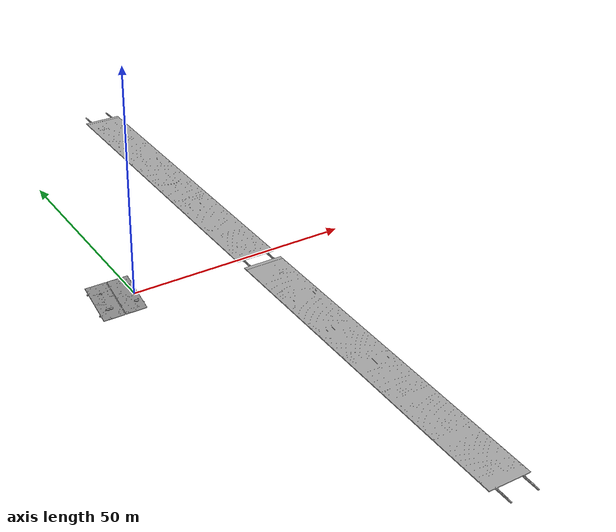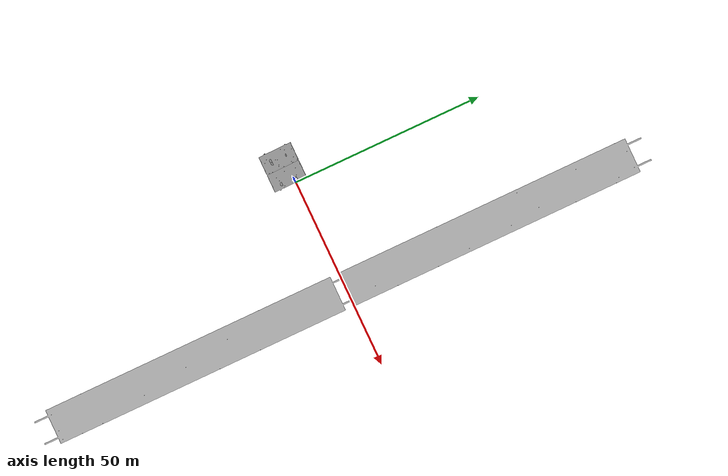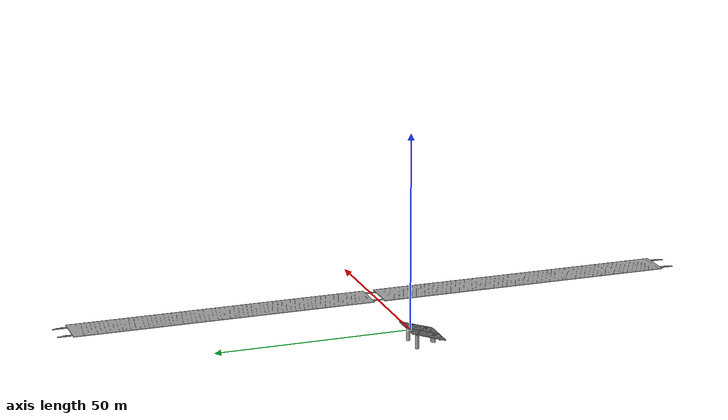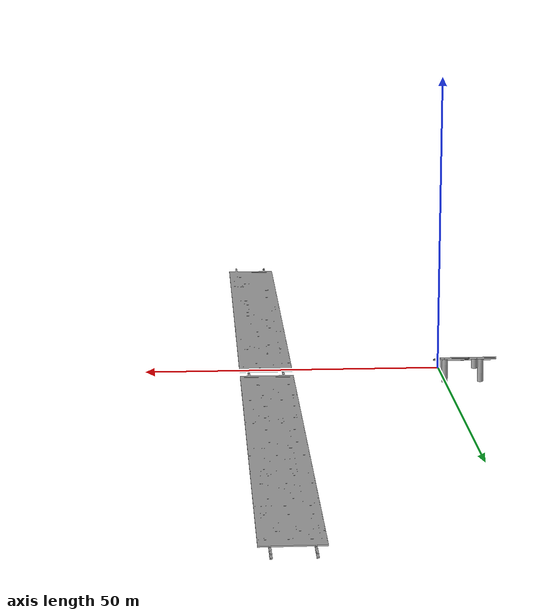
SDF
<?xml version='1.0'?>
<sdf version='1.7'>
  <model name='Panelv4'>
    <link name='link_0'>
      <inertial>
        <mass>1</mass>
        <inertia>
          <ixx>0.166667</ixx>
          <ixy>0</ixy>
          <ixz>0</ixz>
          <iyy>0.166667</iyy>
          <iyz>0</iyz>
          <izz>0.166667</izz>
        </inertia>
        <pose>0 0 0 0 -0 0</pose>
      </inertial>
      <pose>-5.42653 -1.79051 1.22857 0.3 -0 0</pose>
      <gravity>1</gravity>
      <self_collide>0</self_collide>
      <kinematic>0</kinematic>
      <enable_wind>0</enable_wind>
      <visual name='visual'>
        <pose>0 0 0.1 0 -0 0</pose>
        <geometry>
          <mesh>
            <uri>model://Panel/panelsolar.obj</uri>
            <scale>0.06 0.06 0.06</scale>
          </mesh>
        </geometry>
        <material>
          <lighting>1</lighting>
          <script>
            <uri>file://media/materials/scripts/gazebo.material</uri>
            <name>Gazebo/Grey</name>
          </script>
          <shader type='pixel'>
            <normal_map>__default__</normal_map>
          </shader>
          <ambient>0.3 0.3 0.3 1</ambient>
          <diffuse>0.7 0.7 0.7 1</diffuse>
          <specular>0.01 0.01 0.01 1</specular>
          <emissive>0 0 0 1</emissive>
        </material>
        <transparency>0</transparency>
        <cast_shadows>1</cast_shadows>
      </visual>
      <collision name='collision'>
        <laser_retro>0</laser_retro>
        <max_contacts>10</max_contacts>
        <pose>0 0 0 0 -0 0</pose>
        <geometry>
          <mesh>
            <uri>model://Panel/panelsolar.obj</uri>
            <scale>1 1 1</scale>
          </mesh>
        </geometry>
        <surface>
          <friction>
            <ode>
              <mu>1</mu>
              <mu2>1</mu2>
              <fdir1>0 0 0</fdir1>
              <slip1>0</slip1>
              <slip2>0</slip2>
            </ode>
            <torsional>
              <coefficient>1</coefficient>
              <patch_radius>0</patch_radius>
              <surface_radius>0</surface_radius>
              <use_patch_radius>1</use_patch_radius>
              <ode>
                <slip>0</slip>
              </ode>
            </torsional>
          </friction>
          <bounce>
            <restitution_coefficient>0</restitution_coefficient>
            <threshold>1e+06</threshold>
          </bounce>
          <contact>
            <collide_without_contact>0</collide_without_contact>
            <collide_without_contact_bitmask>1</collide_without_contact_bitmask>
            <collide_bitmask>1</collide_bitmask>
            <ode>
              <soft_cfm>0</soft_cfm>
              <soft_erp>0.2</soft_erp>
              <kp>1e+13</kp>
              <kd>1</kd>
              <max_vel>0.01</max_vel>
              <min_depth>0</min_depth>
            </ode>
            <bullet>
              <split_impulse>1</split_impulse>
              <split_impulse_penetration_threshold>-0.01</split_impulse_penetration_threshold>
              <soft_cfm>0</soft_cfm>
              <soft_erp>0.2</soft_erp>
              <kp>1e+13</kp>
              <kd>1</kd>
            </bullet>
          </contact>
        </surface>
      </collision>
    </link>
    <link name='link_1'>
      <inertial>
        <mass>1.71117</mass>
        <inertia>
          <ixx>0.524492</ixx>
          <ixy>0</ixy>
          <ixz>0</ixz>
          <iyy>0.524492</iyy>
          <iyz>0</iyz>
          <izz>0.213897</izz>
        </inertia>
        <pose>0 0 0 0 -0 0</pose>
      </inertial>
      <pose>-1.14288 -3.33207 -0.121429 0 -0 0</pose>
      <visual name='visual'>
        <pose>0 0 0 0 -0 0</pose>
        <geometry>
          <cylinder>
            <radius>0.5</radius>
            <length>1.71118</length>
          </cylinder>
        </geometry>
        <material>
          <lighting>1</lighting>
          <script>
            <uri>file://media/materials/scripts/gazebo.material</uri>
            <name>Gazebo/Grey</name>
          </script>
          <shader type='pixel'/>
          <emissive>0 0 0 1</emissive>
        </material>
        <transparency>0</transparency>
        <cast_shadows>1</cast_shadows>
      </visual>
      <collision name='collision'>
        <laser_retro>0</laser_retro>
        <max_contacts>10</max_contacts>
        <pose>0 0 0 0 -0 0</pose>
        <geometry>
          <cylinder>
            <radius>0.5</radius>
            <length>1.71118</length>
          </cylinder>
        </geometry>
        <surface>
          <friction>
            <ode>
              <mu>1</mu>
              <mu2>1</mu2>
              <fdir1>0 0 0</fdir1>
              <slip1>0</slip1>
              <slip2>0</slip2>
            </ode>
            <torsional>
              <coefficient>1</coefficient>
              <patch_radius>0</patch_radius>
              <surface_radius>0</surface_radius>
              <use_patch_radius>1</use_patch_radius>
              <ode>
                <slip>0</slip>
              </ode>
            </torsional>
          </friction>
          <bounce>
            <restitution_coefficient>0</restitution_coefficient>
            <threshold>1e+06</threshold>
          </bounce>
          <contact>
            <collide_without_contact>0</collide_without_contact>
            <collide_without_contact_bitmask>1</collide_without_contact_bitmask>
            <collide_bitmask>1</collide_bitmask>
            <ode>
              <soft_cfm>0</soft_cfm>
              <soft_erp>0.2</soft_erp>
              <kp>1e+13</kp>
              <kd>1</kd>
              <max_vel>0.01</max_vel>
              <min_depth>0</min_depth>
            </ode>
            <bullet>
              <split_impulse>1</split_impulse>
              <split_impulse_penetration_threshold>-0.01</split_impulse_penetration_threshold>
              <soft_cfm>0</soft_cfm>
              <soft_erp>0.2</soft_erp>
              <kp>1e+13</kp>
              <kd>1</kd>
            </bullet>
          </contact>
        </surface>
      </collision>
    </link>
    <link name='link_1_clone'>
      <inertial>
        <mass>1.71117</mass>
        <inertia>
          <ixx>0.524492</ixx>
          <ixy>0</ixy>
          <ixz>0</ixz>
          <iyy>0.524492</iyy>
          <iyz>0</iyz>
          <izz>0.213897</izz>
        </inertia>
        <pose>0 0 0 0 -0 0</pose>
      </inertial>
      <pose>-7.47631 -3.29105 -0.121429 0 -0 0</pose>
      <visual name='visual'>
        <pose>0 0 0 0 -0 0</pose>
        <geometry>
          <cylinder>
            <radius>0.5</radius>
            <length>1.71118</length>
          </cylinder>
        </geometry>
        <material>
          <lighting>1</lighting>
          <script>
            <uri>file://media/materials/scripts/gazebo.material</uri>
            <name>Gazebo/Grey</name>
          </script>
          <shader type='pixel'/>
          <emissive>0 0 0 1</emissive>
        </material>
        <transparency>0</transparency>
        <cast_shadows>1</cast_shadows>
      </visual>
      <collision name='collision'>
        <laser_retro>0</laser_retro>
        <max_contacts>10</max_contacts>
        <pose>0 0 0 0 -0 0</pose>
        <geometry>
          <cylinder>
            <radius>0.5</radius>
            <length>1.71118</length>
          </cylinder>
        </geometry>
        <surface>
          <friction>
            <ode>
              <mu>1</mu>
              <mu2>1</mu2>
              <fdir1>0 0 0</fdir1>
              <slip1>0</slip1>
              <slip2>0</slip2>
            </ode>
            <torsional>
              <coefficient>1</coefficient>
              <patch_radius>0</patch_radius>
              <surface_radius>0</surface_radius>
              <use_patch_radius>1</use_patch_radius>
              <ode>
                <slip>0</slip>
              </ode>
            </torsional>
          </friction>
          <bounce>
            <restitution_coefficient>0</restitution_coefficient>
            <threshold>1e+06</threshold>
          </bounce>
          <contact>
            <collide_without_contact>0</collide_without_contact>
            <collide_without_contact_bitmask>1</collide_without_contact_bitmask>
            <collide_bitmask>1</collide_bitmask>
            <ode>
              <soft_cfm>0</soft_cfm>
              <soft_erp>0.2</soft_erp>
              <kp>1e+13</kp>
              <kd>1</kd>
              <max_vel>0.01</max_vel>
              <min_depth>0</min_depth>
            </ode>
            <bullet>
              <split_impulse>1</split_impulse>
              <split_impulse_penetration_threshold>-0.01</split_impulse_penetration_threshold>
              <soft_cfm>0</soft_cfm>
              <soft_erp>0.2</soft_erp>
              <kp>1e+13</kp>
              <kd>1</kd>
            </bullet>
          </contact>
        </surface>
      </collision>
    </link>
    <link name='link_1_clone_0'>
      <inertial>
        <mass>1.71117</mass>
        <inertia>
          <ixx>0.524492</ixx>
          <ixy>0</ixy>
          <ixz>0</ixz>
          <iyy>0.524492</iyy>
          <iyz>0</iyz>
          <izz>0.213897</izz>
        </inertia>
        <pose>0 0 0 0 -0 0</pose>
      </inertial>
      <pose>-6.78872 -3.24724 -0.121429 0 -0 0</pose>
      <visual name='visual'>
        <pose>0 0 0 0 -0 0</pose>
        <geometry>
          <cylinder>
            <radius>0.5</radius>
            <length>1.71118</length>
          </cylinder>
        </geometry>
        <material>
          <lighting>1</lighting>
          <script>
            <uri>file://media/materials/scripts/gazebo.material</uri>
            <name>Gazebo/Grey</name>
          </script>
          <shader type='pixel'/>
          <emissive>0 0 0 1</emissive>
        </material>
        <transparency>0</transparency>
        <cast_shadows>1</cast_shadows>
      </visual>
      <collision name='collision'>
        <laser_retro>0</laser_retro>
        <max_contacts>10</max_contacts>
        <pose>0 0 0 0 -0 0</pose>
        <geometry>
          <cylinder>
            <radius>0.5</radius>
            <length>1.71118</length>
          </cylinder>
        </geometry>
        <surface>
          <friction>
            <ode>
              <mu>1</mu>
              <mu2>1</mu2>
              <fdir1>0 0 0</fdir1>
              <slip1>0</slip1>
              <slip2>0</slip2>
            </ode>
            <torsional>
              <coefficient>1</coefficient>
              <patch_radius>0</patch_radius>
              <surface_radius>0</surface_radius>
              <use_patch_radius>1</use_patch_radius>
              <ode>
                <slip>0</slip>
              </ode>
            </torsional>
          </friction>
          <bounce>
            <restitution_coefficient>0</restitution_coefficient>
            <threshold>1e+06</threshold>
          </bounce>
          <contact>
            <collide_without_contact>0</collide_without_contact>
            <collide_without_contact_bitmask>1</collide_without_contact_bitmask>
            <collide_bitmask>1</collide_bitmask>
            <ode>
              <soft_cfm>0</soft_cfm>
              <soft_erp>0.2</soft_erp>
              <kp>1e+13</kp>
              <kd>1</kd>
              <max_vel>0.01</max_vel>
              <min_depth>0</min_depth>
            </ode>
            <bullet>
              <split_impulse>1</split_impulse>
              <split_impulse_penetration_threshold>-0.01</split_impulse_penetration_threshold>
              <soft_cfm>0</soft_cfm>
              <soft_erp>0.2</soft_erp>
              <kp>1e+13</kp>
              <kd>1</kd>
            </bullet>
          </contact>
        </surface>
      </collision>
    </link>
    <link name='link_2'>
      <inertial>
        <mass>4.12324</mass>
        <inertia>
          <ixx>6.09937</ixx>
          <ixy>0</ixy>
          <ixz>0</ixz>
          <iyy>6.09937</iyy>
          <iyz>0</iyz>
          <izz>0.515405</izz>
        </inertia>
        <pose>0 0 0 0 -0 0</pose>
      </inertial>
      <pose>-1.04915 0.894106 -0.121429 0 -0 0</pose>
      <visual name='visual'>
        <pose>0 0 0 0 -0 0</pose>
        <geometry>
          <cylinder>
            <radius>0.5</radius>
            <length>4.12325</length>
          </cylinder>
        </geometry>
        <material>
          <lighting>1</lighting>
          <script>
            <uri>file://media/materials/scripts/gazebo.material</uri>
            <name>Gazebo/Grey</name>
          </script>
          <shader type='pixel'/>
          <emissive>0 0 0 1</emissive>
        </material>
        <transparency>0</transparency>
        <cast_shadows>1</cast_shadows>
      </visual>
      <collision name='collision'>
        <laser_retro>0</laser_retro>
        <max_contacts>10</max_contacts>
        <pose>0 0 0 0 -0 0</pose>
        <geometry>
          <cylinder>
            <radius>0.5</radius>
            <length>4.12325</length>
          </cylinder>
        </geometry>
        <surface>
          <friction>
            <ode>
              <mu>1</mu>
              <mu2>1</mu2>
              <fdir1>0 0 0</fdir1>
              <slip1>0</slip1>
              <slip2>0</slip2>
            </ode>
            <torsional>
              <coefficient>1</coefficient>
              <patch_radius>0</patch_radius>
              <surface_radius>0</surface_radius>
              <use_patch_radius>1</use_patch_radius>
              <ode>
                <slip>0</slip>
              </ode>
            </torsional>
          </friction>
          <bounce>
            <restitution_coefficient>0</restitution_coefficient>
            <threshold>1e+06</threshold>
          </bounce>
          <contact>
            <collide_without_contact>0</collide_without_contact>
            <collide_without_contact_bitmask>1</collide_without_contact_bitmask>
            <collide_bitmask>1</collide_bitmask>
            <ode>
              <soft_cfm>0</soft_cfm>
              <soft_erp>0.2</soft_erp>
              <kp>1e+13</kp>
              <kd>1</kd>
              <max_vel>0.01</max_vel>
              <min_depth>0</min_depth>
            </ode>
            <bullet>
              <split_impulse>1</split_impulse>
              <split_impulse_penetration_threshold>-0.01</split_impulse_penetration_threshold>
              <soft_cfm>0</soft_cfm>
              <soft_erp>0.2</soft_erp>
              <kp>1e+13</kp>
              <kd>1</kd>
            </bullet>
          </contact>
        </surface>
      </collision>
    </link>
    <link name='link_2_clone'>
      <inertial>
        <mass>4.12217</mass>
        <inertia>
          <ixx>6.09779</ixx>
          <ixy>0</ixy>
          <ixz>0</ixz>
          <iyy>6.09779</iyy>
          <iyz>0</iyz>
          <izz>0.515271</izz>
        </inertia>
        <pose>0 0 0 0 -0 0</pose>
      </inertial>
      <pose>-7.19345 0.896573 -0.121429 0 -0 0</pose>
      <visual name='visual'>
        <pose>0 0 0 0 -0 0</pose>
        <geometry>
          <cylinder>
            <radius>0.5</radius>
            <length>4.12325</length>
          </cylinder>
        </geometry>
        <material>
          <lighting>1</lighting>
          <script>
            <uri>file://media/materials/scripts/gazebo.material</uri>
            <name>Gazebo/Grey</name>
          </script>
          <shader type='pixel'/>
          <emissive>0 0 0 1</emissive>
        </material>
        <transparency>0</transparency>
        <cast_shadows>1</cast_shadows>
      </visual>
      <collision name='collision'>
        <laser_retro>0</laser_retro>
        <max_contacts>10</max_contacts>
        <pose>0 0 0 0 -0 0</pose>
        <geometry>
          <cylinder>
            <radius>0.5</radius>
            <length>4.12325</length>
          </cylinder>
        </geometry>
        <surface>
          <friction>
            <ode>
              <mu>1</mu>
              <mu2>1</mu2>
              <fdir1>0 0 0</fdir1>
              <slip1>0</slip1>
              <slip2>0</slip2>
            </ode>
            <torsional>
              <coefficient>1</coefficient>
              <patch_radius>0</patch_radius>
              <surface_radius>0</surface_radius>
              <use_patch_radius>1</use_patch_radius>
              <ode>
                <slip>0</slip>
              </ode>
            </torsional>
          </friction>
          <bounce>
            <restitution_coefficient>0</restitution_coefficient>
            <threshold>1e+06</threshold>
          </bounce>
          <contact>
            <collide_without_contact>0</collide_without_contact>
            <collide_without_contact_bitmask>1</collide_without_contact_bitmask>
            <collide_bitmask>1</collide_bitmask>
            <ode>
              <soft_cfm>0</soft_cfm>
              <soft_erp>0.2</soft_erp>
              <kp>1e+13</kp>
              <kd>1</kd>
              <max_vel>0.01</max_vel>
              <min_depth>0</min_depth>
            </ode>
            <bullet>
              <split_impulse>1</split_impulse>
              <split_impulse_penetration_threshold>-0.01</split_impulse_penetration_threshold>
              <soft_cfm>0</soft_cfm>
              <soft_erp>0.2</soft_erp>
              <kp>1e+13</kp>
              <kd>1</kd>
            </bullet>
          </contact>
        </surface>
      </collision>
    </link>
    <model name='panel'>
      <static>1</static>
      <link name='link'>
        <collision name='collision'>
          <pose>0 0 0 0 0 -1.5708</pose>
          <geometry>
            <mesh>
              <scale>1 0.06 0.06</scale>
              <uri>model://Panel/panelsolar.obj</uri>
            </mesh>
          </geometry>
        </collision>
        <visual name='visual'>
          <pose>0 0 0 0 0 -1.5708</pose>
          <geometry>
            <mesh>
              <scale>1 0.06 0.06</scale>
              <uri>model://Panel/panelsolar.obj</uri>
            </mesh>
          </geometry>
        </visual>
      </link>
      <pose>29.0771 9.87018 -0.621429 0 -0 0</pose>
    </model>
    <joint name='link_2_clone_JOINT_0' type='revolute'>
      <parent>link_2_clone</parent>
      <child>link_2</child>
      <pose>0 0 0 0 -0 0</pose>
      <axis>
        <xyz>1 0 0</xyz>
        <limit>
          <lower>-1.79769e+308</lower>
          <upper>1.79769e+308</upper>
          <effort>-1</effort>
          <velocity>-1</velocity>
        </limit>
        <dynamics>
          <spring_reference>0</spring_reference>
          <spring_stiffness>0</spring_stiffness>
          <damping>0</damping>
        </dynamics>
      </axis>
      <physics>
        <ode>
          <limit>
            <cfm>0</cfm>
            <erp>0.2</erp>
          </limit>
          <suspension>
            <cfm>0</cfm>
            <erp>0.2</erp>
          </suspension>
        </ode>
      </physics>
    </joint>
    <static>0</static>
    <allow_auto_disable>1</allow_auto_disable>
  </model>
</sdf>
